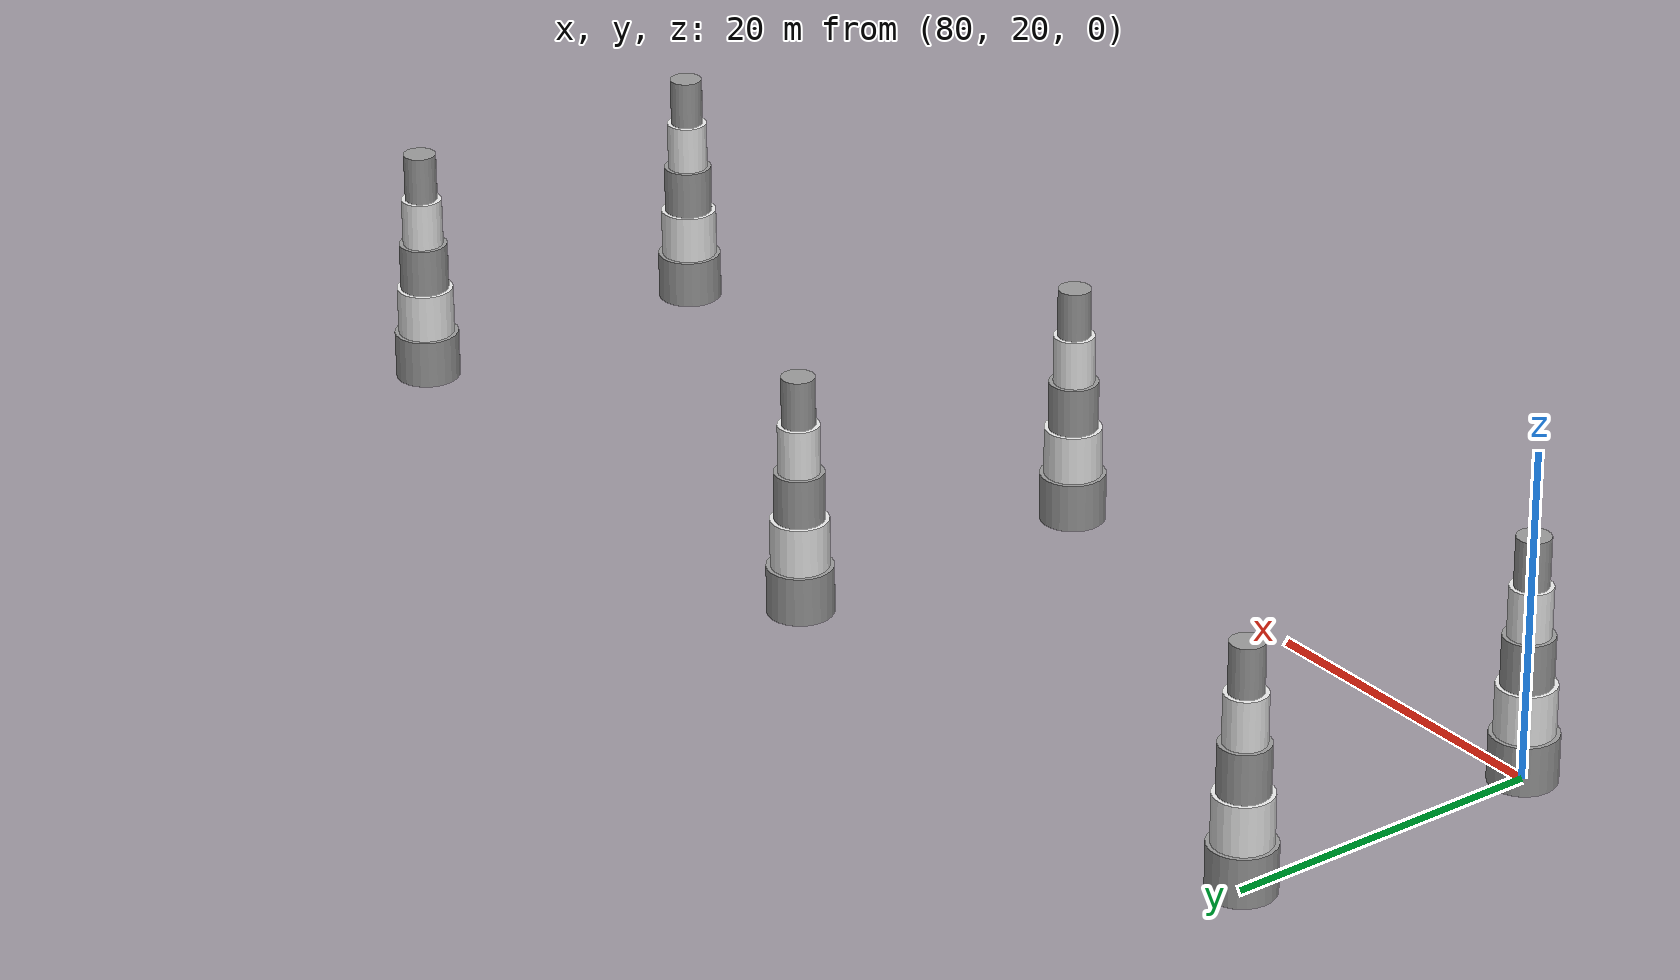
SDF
<sdf version="1.4">
 <world name="fw_playground">
  <model name="pylon5">
   <static>true</static>
   <link name="pylon">
    <pose>80 20 0 0 0 0</pose>
    <visual name="v1">
     <pose>0 0 1.5 0 0 0</pose>
     <geometry><cylinder><radius>2</radius><length>3</length></cylinder></geometry>
     <material>
      <script><uri>file://media/materials/scripts/gazebo.material</uri><name>Gazebo/Grey</name></script>
     </material>
    </visual>
    <collision name="c1">
     <pose>0 0 1.5 0 0 0</pose>
     <geometry><cylinder><radius>2</radius><length>3</length></cylinder></geometry>
    </collision>
    <visual name="v2">
     <pose>0 0 4.5 0 0 0</pose>
     <geometry><cylinder><radius>1.75</radius><length>3</length></cylinder></geometry>
     <material>
      <script><uri>file://media/materials/scripts/gazebo.material</uri><name>Gazebo/White</name></script>
     </material>
    </visual>
    <collision name="c2">
     <pose>0 0 4.5 0 0 0</pose>
     <geometry><cylinder><radius>1.75</radius><length>3</length></cylinder></geometry>
    </collision>
    <visual name="v3">
     <pose>0 0 7.5 0 0 0</pose>
     <geometry><cylinder><radius>1.5</radius><length>3</length></cylinder></geometry>
     <material>
      <script><uri>file://media/materials/scripts/gazebo.material</uri><name>Gazebo/Grey</name></script>
     </material>
    </visual>
    <collision name="c3">
     <pose>0 0 7.5 0 0 0</pose>
     <geometry><cylinder><radius>1.5</radius><length>3</length></cylinder></geometry>
    </collision>
    <visual name="v4">
     <pose>0 0 10.5 0 0 0</pose>
     <geometry><cylinder><radius>1.25</radius><length>3</length></cylinder></geometry>
     <material>
      <script><uri>file://media/materials/scripts/gazebo.material</uri><name>Gazebo/White</name></script>
     </material>
    </visual>
    <collision name="c4">
     <pose>0 0 10.5 0 0 0</pose>
     <geometry><cylinder><radius>1.25</radius><length>3</length></cylinder></geometry>
    </collision>
    <visual name="v5">
     <pose>0 0 13.5 0 0 0</pose>
     <geometry><cylinder><radius>1</radius><length>3</length></cylinder></geometry>
     <material>
      <script><uri>file://media/materials/scripts/gazebo.material</uri><name>Gazebo/Grey</name></script>
     </material>
    </visual>
    <collision name="c5">
     <pose>0 0 13.5 0 0 0</pose>
     <geometry><cylinder><radius>1</radius><length>3</length></cylinder></geometry>
    </collision>
   </link>
  </model>
  <model name="pylon6">
   <static>true</static>
   <link name="pylon">
    <pose>80 40 0 0 0 0</pose>
    <visual name="v1">
     <pose>0 0 1.5 0 0 0</pose>
     <geometry><cylinder><radius>2</radius><length>3</length></cylinder></geometry>
     <material>
      <script><uri>file://media/materials/scripts/gazebo.material</uri><name>Gazebo/Grey</name></script>
     </material>
    </visual>
    <collision name="c1">
     <pose>0 0 1.5 0 0 0</pose>
     <geometry><cylinder><radius>2</radius><length>3</length></cylinder></geometry>
    </collision>
    <visual name="v2">
     <pose>0 0 4.5 0 0 0</pose>
     <geometry><cylinder><radius>1.75</radius><length>3</length></cylinder></geometry>
     <material>
      <script><uri>file://media/materials/scripts/gazebo.material</uri><name>Gazebo/White</name></script>
     </material>
    </visual>
    <collision name="c2">
     <pose>0 0 4.5 0 0 0</pose>
     <geometry><cylinder><radius>1.75</radius><length>3</length></cylinder></geometry>
    </collision>
    <visual name="v3">
     <pose>0 0 7.5 0 0 0</pose>
     <geometry><cylinder><radius>1.5</radius><length>3</length></cylinder></geometry>
     <material>
      <script><uri>file://media/materials/scripts/gazebo.material</uri><name>Gazebo/Grey</name></script>
     </material>
    </visual>
    <collision name="c3">
     <pose>0 0 7.5 0 0 0</pose>
     <geometry><cylinder><radius>1.5</radius><length>3</length></cylinder></geometry>
    </collision>
    <visual name="v4">
     <pose>0 0 10.5 0 0 0</pose>
     <geometry><cylinder><radius>1.25</radius><length>3</length></cylinder></geometry>
     <material>
      <script><uri>file://media/materials/scripts/gazebo.material</uri><name>Gazebo/White</name></script>
     </material>
    </visual>
    <collision name="c4">
     <pose>0 0 10.5 0 0 0</pose>
     <geometry><cylinder><radius>1.25</radius><length>3</length></cylinder></geometry>
    </collision>
    <visual name="v5">
     <pose>0 0 13.5 0 0 0</pose>
     <geometry><cylinder><radius>1</radius><length>3</length></cylinder></geometry>
     <material>
      <script><uri>file://media/materials/scripts/gazebo.material</uri><name>Gazebo/Grey</name></script>
     </material>
    </visual>
    <collision name="c5">
     <pose>0 0 13.5 0 0 0</pose>
     <geometry><cylinder><radius>1</radius><length>3</length></cylinder></geometry>
    </collision>
   </link>
  </model>
  <model name="pylon7">
   <static>true</static>
   <link name="pylon">
    <pose>120 20 0 0 0 0</pose>
    <visual name="v1">
     <pose>0 0 1.5 0 0 0</pose>
     <geometry><cylinder><radius>2</radius><length>3</length></cylinder></geometry>
     <material>
      <script><uri>file://media/materials/scripts/gazebo.material</uri><name>Gazebo/Grey</name></script>
     </material>
    </visual>
    <collision name="c1">
     <pose>0 0 1.5 0 0 0</pose>
     <geometry><cylinder><radius>2</radius><length>3</length></cylinder></geometry>
    </collision>
    <visual name="v2">
     <pose>0 0 4.5 0 0 0</pose>
     <geometry><cylinder><radius>1.75</radius><length>3</length></cylinder></geometry>
     <material>
      <script><uri>file://media/materials/scripts/gazebo.material</uri><name>Gazebo/White</name></script>
     </material>
    </visual>
    <collision name="c2">
     <pose>0 0 4.5 0 0 0</pose>
     <geometry><cylinder><radius>1.75</radius><length>3</length></cylinder></geometry>
    </collision>
    <visual name="v3">
     <pose>0 0 7.5 0 0 0</pose>
     <geometry><cylinder><radius>1.5</radius><length>3</length></cylinder></geometry>
     <material>
      <script><uri>file://media/materials/scripts/gazebo.material</uri><name>Gazebo/Grey</name></script>
     </material>
    </visual>
    <collision name="c3">
     <pose>0 0 7.5 0 0 0</pose>
     <geometry><cylinder><radius>1.5</radius><length>3</length></cylinder></geometry>
    </collision>
    <visual name="v4">
     <pose>0 0 10.5 0 0 0</pose>
     <geometry><cylinder><radius>1.25</radius><length>3</length></cylinder></geometry>
     <material>
      <script><uri>file://media/materials/scripts/gazebo.material</uri><name>Gazebo/White</name></script>
     </material>
    </visual>
    <collision name="c4">
     <pose>0 0 10.5 0 0 0</pose>
     <geometry><cylinder><radius>1.25</radius><length>3</length></cylinder></geometry>
    </collision>
    <visual name="v5">
     <pose>0 0 13.5 0 0 0</pose>
     <geometry><cylinder><radius>1</radius><length>3</length></cylinder></geometry>
     <material>
      <script><uri>file://media/materials/scripts/gazebo.material</uri><name>Gazebo/Grey</name></script>
     </material>
    </visual>
    <collision name="c5">
     <pose>0 0 13.5 0 0 0</pose>
     <geometry><cylinder><radius>1</radius><length>3</length></cylinder></geometry>
    </collision>
   </link>
  </model>
  <model name="pylon8">
   <static>true</static>
   <link name="pylon">
    <pose>120 40 0 0 0 0</pose>
    <visual name="v1">
     <pose>0 0 1.5 0 0 0</pose>
     <geometry><cylinder><radius>2</radius><length>3</length></cylinder></geometry>
     <material>
      <script><uri>file://media/materials/scripts/gazebo.material</uri><name>Gazebo/Grey</name></script>
     </material>
    </visual>
    <collision name="c1">
     <pose>0 0 1.5 0 0 0</pose>
     <geometry><cylinder><radius>2</radius><length>3</length></cylinder></geometry>
    </collision>
    <visual name="v2">
     <pose>0 0 4.5 0 0 0</pose>
     <geometry><cylinder><radius>1.75</radius><length>3</length></cylinder></geometry>
     <material>
      <script><uri>file://media/materials/scripts/gazebo.material</uri><name>Gazebo/White</name></script>
     </material>
    </visual>
    <collision name="c2">
     <pose>0 0 4.5 0 0 0</pose>
     <geometry><cylinder><radius>1.75</radius><length>3</length></cylinder></geometry>
    </collision>
    <visual name="v3">
     <pose>0 0 7.5 0 0 0</pose>
     <geometry><cylinder><radius>1.5</radius><length>3</length></cylinder></geometry>
     <material>
      <script><uri>file://media/materials/scripts/gazebo.material</uri><name>Gazebo/Grey</name></script>
     </material>
    </visual>
    <collision name="c3">
     <pose>0 0 7.5 0 0 0</pose>
     <geometry><cylinder><radius>1.5</radius><length>3</length></cylinder></geometry>
    </collision>
    <visual name="v4">
     <pose>0 0 10.5 0 0 0</pose>
     <geometry><cylinder><radius>1.25</radius><length>3</length></cylinder></geometry>
     <material>
      <script><uri>file://media/materials/scripts/gazebo.material</uri><name>Gazebo/White</name></script>
     </material>
    </visual>
    <collision name="c4">
     <pose>0 0 10.5 0 0 0</pose>
     <geometry><cylinder><radius>1.25</radius><length>3</length></cylinder></geometry>
    </collision>
    <visual name="v5">
     <pose>0 0 13.5 0 0 0</pose>
     <geometry><cylinder><radius>1</radius><length>3</length></cylinder></geometry>
     <material>
      <script><uri>file://media/materials/scripts/gazebo.material</uri><name>Gazebo/Grey</name></script>
     </material>
    </visual>
    <collision name="c5">
     <pose>0 0 13.5 0 0 0</pose>
     <geometry><cylinder><radius>1</radius><length>3</length></cylinder></geometry>
    </collision>
   </link>
  </model>
  <model name="pylon9">
   <static>true</static>
   <link name="pylon">
    <pose>160 20 0 0 0 0</pose>
    <visual name="v1">
     <pose>0 0 1.5 0 0 0</pose>
     <geometry><cylinder><radius>2</radius><length>3</length></cylinder></geometry>
     <material>
      <script><uri>file://media/materials/scripts/gazebo.material</uri><name>Gazebo/Grey</name></script>
     </material>
    </visual>
    <collision name="c1">
     <pose>0 0 1.5 0 0 0</pose>
     <geometry><cylinder><radius>2</radius><length>3</length></cylinder></geometry>
    </collision>
    <visual name="v2">
     <pose>0 0 4.5 0 0 0</pose>
     <geometry><cylinder><radius>1.75</radius><length>3</length></cylinder></geometry>
     <material>
      <script><uri>file://media/materials/scripts/gazebo.material</uri><name>Gazebo/White</name></script>
     </material>
    </visual>
    <collision name="c2">
     <pose>0 0 4.5 0 0 0</pose>
     <geometry><cylinder><radius>1.75</radius><length>3</length></cylinder></geometry>
    </collision>
    <visual name="v3">
     <pose>0 0 7.5 0 0 0</pose>
     <geometry><cylinder><radius>1.5</radius><length>3</length></cylinder></geometry>
     <material>
      <script><uri>file://media/materials/scripts/gazebo.material</uri><name>Gazebo/Grey</name></script>
     </material>
    </visual>
    <collision name="c3">
     <pose>0 0 7.5 0 0 0</pose>
     <geometry><cylinder><radius>1.5</radius><length>3</length></cylinder></geometry>
    </collision>
    <visual name="v4">
     <pose>0 0 10.5 0 0 0</pose>
     <geometry><cylinder><radius>1.25</radius><length>3</length></cylinder></geometry>
     <material>
      <script><uri>file://media/materials/scripts/gazebo.material</uri><name>Gazebo/White</name></script>
     </material>
    </visual>
    <collision name="c4">
     <pose>0 0 10.5 0 0 0</pose>
     <geometry><cylinder><radius>1.25</radius><length>3</length></cylinder></geometry>
    </collision>
    <visual name="v5">
     <pose>0 0 13.5 0 0 0</pose>
     <geometry><cylinder><radius>1</radius><length>3</length></cylinder></geometry>
     <material>
      <script><uri>file://media/materials/scripts/gazebo.material</uri><name>Gazebo/Grey</name></script>
     </material>
    </visual>
    <collision name="c5">
     <pose>0 0 13.5 0 0 0</pose>
     <geometry><cylinder><radius>1</radius><length>3</length></cylinder></geometry>
    </collision>
   </link>
  </model>
  <model name="pylon10">
   <static>true</static>
   <link name="pylon">
    <pose>160 40 0 0 0 0</pose>
    <visual name="v1">
     <pose>0 0 1.5 0 0 0</pose>
     <geometry><cylinder><radius>2</radius><length>3</length></cylinder></geometry>
     <material>
      <script><uri>file://media/materials/scripts/gazebo.material</uri><name>Gazebo/Grey</name></script>
     </material>
    </visual>
    <collision name="c1">
     <pose>0 0 1.5 0 0 0</pose>
     <geometry><cylinder><radius>2</radius><length>3</length></cylinder></geometry>
    </collision>
    <visual name="v2">
     <pose>0 0 4.5 0 0 0</pose>
     <geometry><cylinder><radius>1.75</radius><length>3</length></cylinder></geometry>
     <material>
      <script><uri>file://media/materials/scripts/gazebo.material</uri><name>Gazebo/White</name></script>
     </material>
    </visual>
    <collision name="c2">
     <pose>0 0 4.5 0 0 0</pose>
     <geometry><cylinder><radius>1.75</radius><length>3</length></cylinder></geometry>
    </collision>
    <visual name="v3">
     <pose>0 0 7.5 0 0 0</pose>
     <geometry><cylinder><radius>1.5</radius><length>3</length></cylinder></geometry>
     <material>
      <script><uri>file://media/materials/scripts/gazebo.material</uri><name>Gazebo/Grey</name></script>
     </material>
    </visual>
    <collision name="c3">
     <pose>0 0 7.5 0 0 0</pose>
     <geometry><cylinder><radius>1.5</radius><length>3</length></cylinder></geometry>
    </collision>
    <visual name="v4">
     <pose>0 0 10.5 0 0 0</pose>
     <geometry><cylinder><radius>1.25</radius><length>3</length></cylinder></geometry>
     <material>
      <script><uri>file://media/materials/scripts/gazebo.material</uri><name>Gazebo/White</name></script>
     </material>
    </visual>
    <collision name="c4">
     <pose>0 0 10.5 0 0 0</pose>
     <geometry><cylinder><radius>1.25</radius><length>3</length></cylinder></geometry>
    </collision>
    <visual name="v5">
     <pose>0 0 13.5 0 0 0</pose>
     <geometry><cylinder><radius>1</radius><length>3</length></cylinder></geometry>
     <material>
      <script><uri>file://media/materials/scripts/gazebo.material</uri><name>Gazebo/Grey</name></script>
     </material>
    </visual>
    <collision name="c5">
     <pose>0 0 13.5 0 0 0</pose>
     <geometry><cylinder><radius>1</radius><length>3</length></cylinder></geometry>
    </collision>
   </link>
  </model>
 </world>
</sdf>
